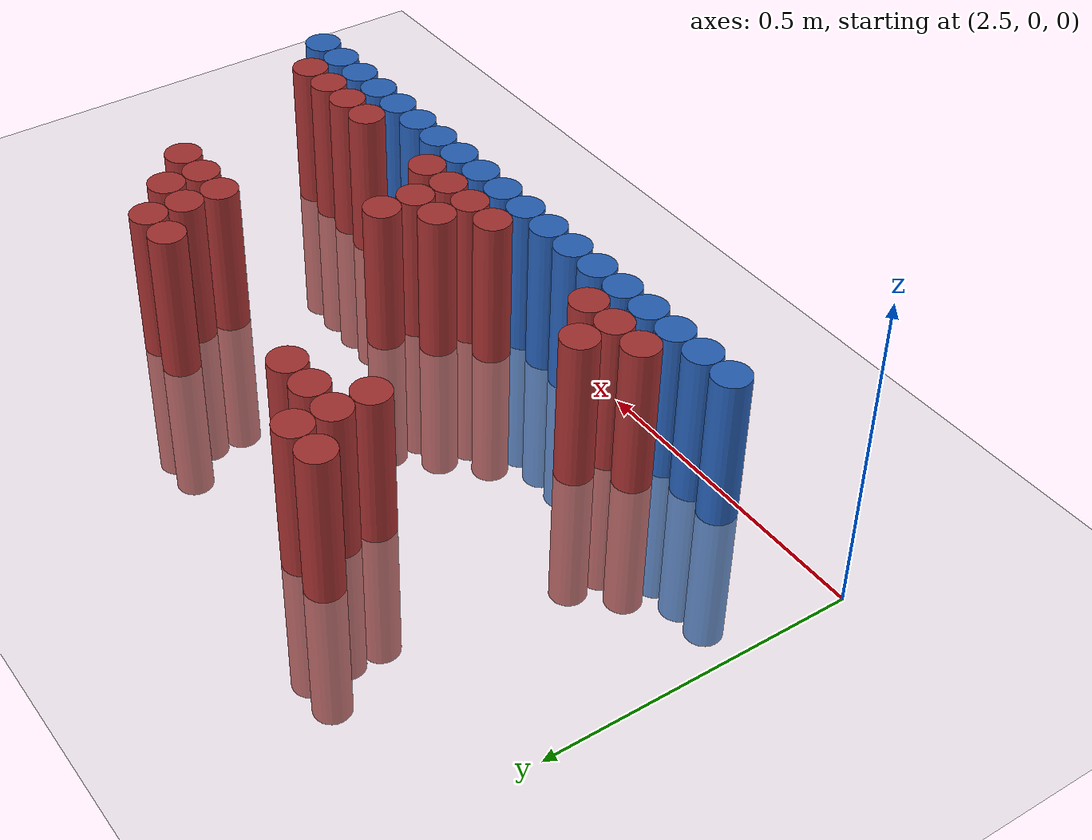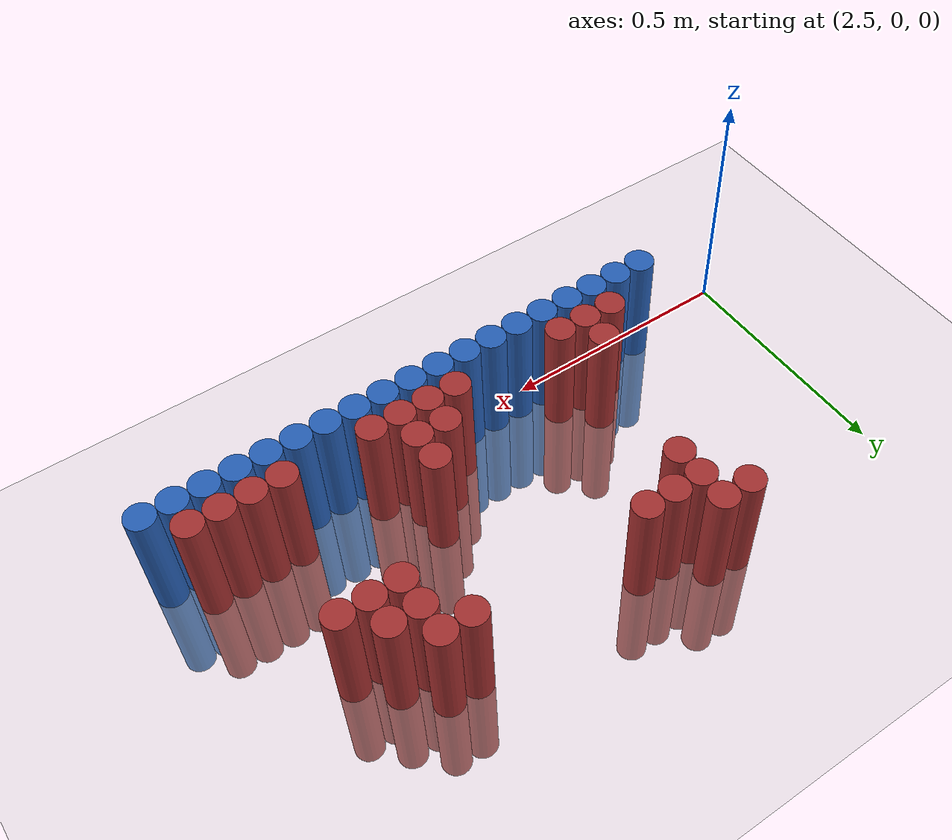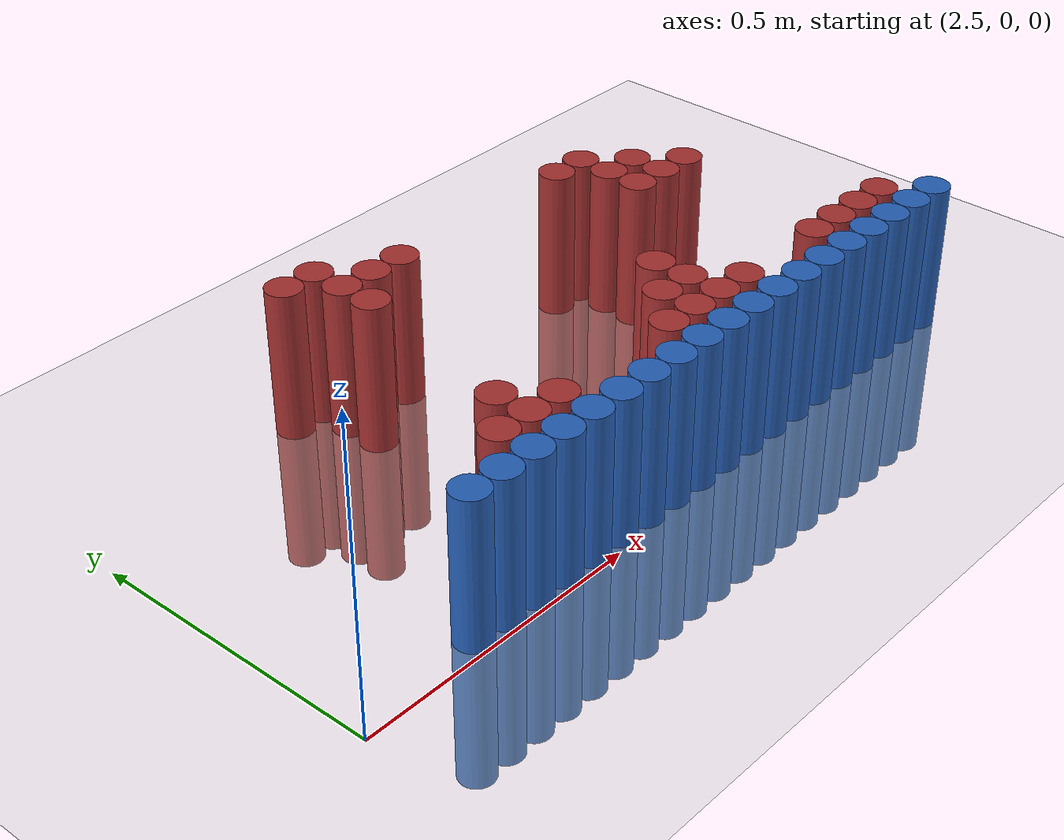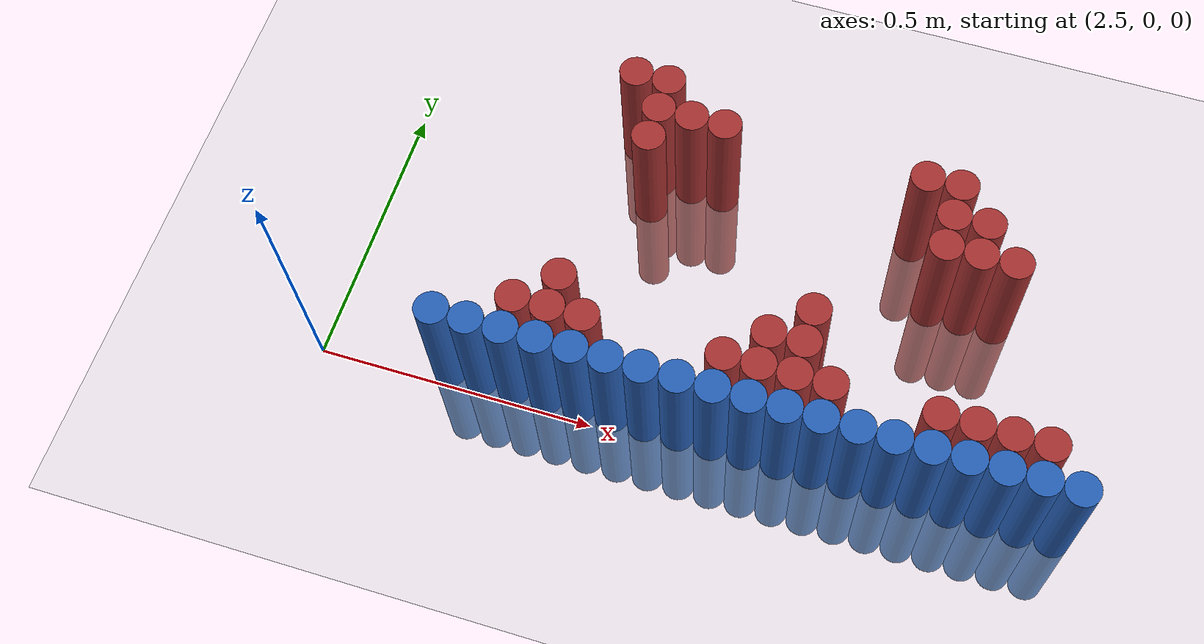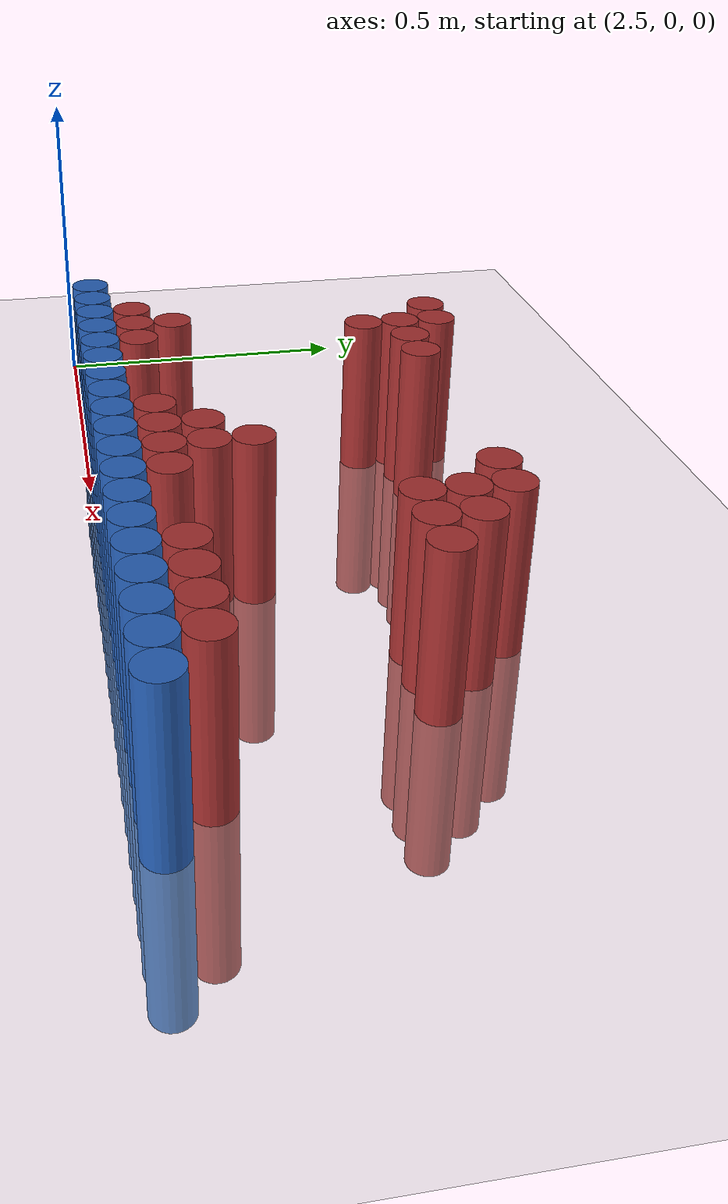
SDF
<sdf version="1.6">
 <world name="default">
  <model name="ground_plane">
   <static>1</static>
   <link name="link">
    <collision name="collision">
     <geometry><plane><normal>0 0 1</normal><size>100 100</size></plane></geometry>
     <surface><friction><ode><mu>100</mu><mu2>50</mu2></ode></friction></surface>
    </collision>
    <visual name="visual">
     <cast_shadows>0</cast_shadows>
     <geometry><plane><normal>0 0 1</normal><size>100 100</size></plane></geometry>
     <material>
      <script><uri>file://media/materials/scripts/gazebo.material</uri><name>Gazebo/Grey</name></script>
     </material>
    </visual>
   </link>
  </model>
  <model name="unit_cylinder_167">
   <static>1</static>
   <pose>2.910000 0.570000 0.000000 0.000000 0.000000 0.000000</pose>
   <link name="link">
    <inertial>
     <mass>1</mass>
     <inertia><ixx>0.145833</ixx><ixy>0</ixy><ixz>0</ixz><iyy>0.145833</iyy><iyz>0</iyz><izz>0.125</izz></inertia>
    </inertial>
    <collision name="collision">
     <geometry><cylinder><radius>0.030000</radius><length>0.5</length></cylinder></geometry>
    </collision>
    <visual name="visual">
     <geometry><cylinder><radius>0.030000</radius><length>0.5</length></cylinder></geometry>
     <material>
      <ambient>0.648000 0.192000 0.192000 1</ambient>
      <diffuse>0.648000 0.192000 0.192000 1</diffuse>
     </material>
     <material>
      <script><name>Gazebo/Grey</name><uri>file://media/materials/scripts/gazebo.material</uri></script>
     </material>
    </visual>
   </link>
  </model>
  <model name="unit_cylinder_168">
   <static>1</static>
   <pose>2.970000 0.570000 0.000000 0.000000 0.000000 0.000000</pose>
   <link name="link">
    <inertial>
     <mass>1</mass>
     <inertia><ixx>0.145833</ixx><ixy>0</ixy><ixz>0</ixz><iyy>0.145833</iyy><iyz>0</iyz><izz>0.125</izz></inertia>
    </inertial>
    <collision name="collision">
     <geometry><cylinder><radius>0.030000</radius><length>0.5</length></cylinder></geometry>
    </collision>
    <visual name="visual">
     <geometry><cylinder><radius>0.030000</radius><length>0.5</length></cylinder></geometry>
     <material>
      <ambient>0.648000 0.192000 0.192000 1</ambient>
      <diffuse>0.648000 0.192000 0.192000 1</diffuse>
     </material>
     <material>
      <script><name>Gazebo/Grey</name><uri>file://media/materials/scripts/gazebo.material</uri></script>
     </material>
    </visual>
   </link>
  </model>
  <model name="unit_cylinder_172">
   <static>1</static>
   <pose>2.970000 0.510000 0.000000 0.000000 0.000000 0.000000</pose>
   <link name="link">
    <inertial>
     <mass>1</mass>
     <inertia><ixx>0.145833</ixx><ixy>0</ixy><ixz>0</ixz><iyy>0.145833</iyy><iyz>0</iyz><izz>0.125</izz></inertia>
    </inertial>
    <collision name="collision">
     <geometry><cylinder><radius>0.030000</radius><length>0.5</length></cylinder></geometry>
    </collision>
    <visual name="visual">
     <geometry><cylinder><radius>0.030000</radius><length>0.5</length></cylinder></geometry>
     <material>
      <ambient>0.648000 0.192000 0.192000 1</ambient>
      <diffuse>0.648000 0.192000 0.192000 1</diffuse>
     </material>
     <material>
      <script><name>Gazebo/Grey</name><uri>file://media/materials/scripts/gazebo.material</uri></script>
     </material>
    </visual>
   </link>
  </model>
  <model name="unit_cylinder_173">
   <static>1</static>
   <pose>3.030000 0.510000 0.000000 0.000000 0.000000 0.000000</pose>
   <link name="link">
    <inertial>
     <mass>1</mass>
     <inertia><ixx>0.145833</ixx><ixy>0</ixy><ixz>0</ixz><iyy>0.145833</iyy><iyz>0</iyz><izz>0.125</izz></inertia>
    </inertial>
    <collision name="collision">
     <geometry><cylinder><radius>0.030000</radius><length>0.5</length></cylinder></geometry>
    </collision>
    <visual name="visual">
     <geometry><cylinder><radius>0.030000</radius><length>0.5</length></cylinder></geometry>
     <material>
      <ambient>0.648000 0.192000 0.192000 1</ambient>
      <diffuse>0.648000 0.192000 0.192000 1</diffuse>
     </material>
     <material>
      <script><name>Gazebo/Grey</name><uri>file://media/materials/scripts/gazebo.material</uri></script>
     </material>
    </visual>
   </link>
  </model>
  <model name="unit_cylinder_174">
   <static>1</static>
   <pose>3.090000 0.510000 0.000000 0.000000 0.000000 0.000000</pose>
   <link name="link">
    <inertial>
     <mass>1</mass>
     <inertia><ixx>0.145833</ixx><ixy>0</ixy><ixz>0</ixz><iyy>0.145833</iyy><iyz>0</iyz><izz>0.125</izz></inertia>
    </inertial>
    <collision name="collision">
     <geometry><cylinder><radius>0.030000</radius><length>0.5</length></cylinder></geometry>
    </collision>
    <visual name="visual">
     <geometry><cylinder><radius>0.030000</radius><length>0.5</length></cylinder></geometry>
     <material>
      <ambient>0.648000 0.192000 0.192000 1</ambient>
      <diffuse>0.648000 0.192000 0.192000 1</diffuse>
     </material>
     <material>
      <script><name>Gazebo/Grey</name><uri>file://media/materials/scripts/gazebo.material</uri></script>
     </material>
    </visual>
   </link>
  </model>
  <model name="unit_cylinder_175">
   <static>1</static>
   <pose>3.450000 0.510000 0.000000 0.000000 0.000000 0.000000</pose>
   <link name="link">
    <inertial>
     <mass>1</mass>
     <inertia><ixx>0.145833</ixx><ixy>0</ixy><ixz>0</ixz><iyy>0.145833</iyy><iyz>0</iyz><izz>0.125</izz></inertia>
    </inertial>
    <collision name="collision">
     <geometry><cylinder><radius>0.030000</radius><length>0.5</length></cylinder></geometry>
    </collision>
    <visual name="visual">
     <geometry><cylinder><radius>0.030000</radius><length>0.5</length></cylinder></geometry>
     <material>
      <ambient>0.648000 0.192000 0.192000 1</ambient>
      <diffuse>0.648000 0.192000 0.192000 1</diffuse>
     </material>
     <material>
      <script><name>Gazebo/Grey</name><uri>file://media/materials/scripts/gazebo.material</uri></script>
     </material>
    </visual>
   </link>
  </model>
  <model name="unit_cylinder_176">
   <static>1</static>
   <pose>3.510000 0.510000 0.000000 0.000000 0.000000 0.000000</pose>
   <link name="link">
    <inertial>
     <mass>1</mass>
     <inertia><ixx>0.145833</ixx><ixy>0</ixy><ixz>0</ixz><iyy>0.145833</iyy><iyz>0</iyz><izz>0.125</izz></inertia>
    </inertial>
    <collision name="collision">
     <geometry><cylinder><radius>0.030000</radius><length>0.5</length></cylinder></geometry>
    </collision>
    <visual name="visual">
     <geometry><cylinder><radius>0.030000</radius><length>0.5</length></cylinder></geometry>
     <material>
      <ambient>0.648000 0.192000 0.192000 1</ambient>
      <diffuse>0.648000 0.192000 0.192000 1</diffuse>
     </material>
     <material>
      <script><name>Gazebo/Grey</name><uri>file://media/materials/scripts/gazebo.material</uri></script>
     </material>
    </visual>
   </link>
  </model>
  <model name="unit_cylinder_179">
   <static>1</static>
   <pose>2.970000 0.450000 0.000000 0.000000 0.000000 0.000000</pose>
   <link name="link">
    <inertial>
     <mass>1</mass>
     <inertia><ixx>0.145833</ixx><ixy>0</ixy><ixz>0</ixz><iyy>0.145833</iyy><iyz>0</iyz><izz>0.125</izz></inertia>
    </inertial>
    <collision name="collision">
     <geometry><cylinder><radius>0.030000</radius><length>0.5</length></cylinder></geometry>
    </collision>
    <visual name="visual">
     <geometry><cylinder><radius>0.030000</radius><length>0.5</length></cylinder></geometry>
     <material>
      <ambient>0.648000 0.192000 0.192000 1</ambient>
      <diffuse>0.648000 0.192000 0.192000 1</diffuse>
     </material>
     <material>
      <script><name>Gazebo/Grey</name><uri>file://media/materials/scripts/gazebo.material</uri></script>
     </material>
    </visual>
   </link>
  </model>
  <model name="unit_cylinder_180">
   <static>1</static>
   <pose>3.510000 0.450000 0.000000 0.000000 0.000000 0.000000</pose>
   <link name="link">
    <inertial>
     <mass>1</mass>
     <inertia><ixx>0.145833</ixx><ixy>0</ixy><ixz>0</ixz><iyy>0.145833</iyy><iyz>0</iyz><izz>0.125</izz></inertia>
    </inertial>
    <collision name="collision">
     <geometry><cylinder><radius>0.030000</radius><length>0.5</length></cylinder></geometry>
    </collision>
    <visual name="visual">
     <geometry><cylinder><radius>0.030000</radius><length>0.5</length></cylinder></geometry>
     <material>
      <ambient>0.648000 0.192000 0.192000 1</ambient>
      <diffuse>0.648000 0.192000 0.192000 1</diffuse>
     </material>
     <material>
      <script><name>Gazebo/Grey</name><uri>file://media/materials/scripts/gazebo.material</uri></script>
     </material>
    </visual>
   </link>
  </model>
  <model name="unit_cylinder_181">
   <static>1</static>
   <pose>3.570000 0.450000 0.000000 0.000000 0.000000 0.000000</pose>
   <link name="link">
    <inertial>
     <mass>1</mass>
     <inertia><ixx>0.145833</ixx><ixy>0</ixy><ixz>0</ixz><iyy>0.145833</iyy><iyz>0</iyz><izz>0.125</izz></inertia>
    </inertial>
    <collision name="collision">
     <geometry><cylinder><radius>0.030000</radius><length>0.5</length></cylinder></geometry>
    </collision>
    <visual name="visual">
     <geometry><cylinder><radius>0.030000</radius><length>0.5</length></cylinder></geometry>
     <material>
      <ambient>0.648000 0.192000 0.192000 1</ambient>
      <diffuse>0.648000 0.192000 0.192000 1</diffuse>
     </material>
     <material>
      <script><name>Gazebo/Grey</name><uri>file://media/materials/scripts/gazebo.material</uri></script>
     </material>
    </visual>
   </link>
  </model>
  <model name="unit_cylinder_185">
   <static>1</static>
   <pose>3.510000 0.390000 0.000000 0.000000 0.000000 0.000000</pose>
   <link name="link">
    <inertial>
     <mass>1</mass>
     <inertia><ixx>0.145833</ixx><ixy>0</ixy><ixz>0</ixz><iyy>0.145833</iyy><iyz>0</iyz><izz>0.125</izz></inertia>
    </inertial>
    <collision name="collision">
     <geometry><cylinder><radius>0.030000</radius><length>0.5</length></cylinder></geometry>
    </collision>
    <visual name="visual">
     <geometry><cylinder><radius>0.030000</radius><length>0.5</length></cylinder></geometry>
     <material>
      <ambient>0.648000 0.192000 0.192000 1</ambient>
      <diffuse>0.648000 0.192000 0.192000 1</diffuse>
     </material>
     <material>
      <script><name>Gazebo/Grey</name><uri>file://media/materials/scripts/gazebo.material</uri></script>
     </material>
    </visual>
   </link>
  </model>
  <model name="unit_cylinder_186">
   <static>1</static>
   <pose>3.570000 0.390000 0.000000 0.000000 0.000000 0.000000</pose>
   <link name="link">
    <inertial>
     <mass>1</mass>
     <inertia><ixx>0.145833</ixx><ixy>0</ixy><ixz>0</ixz><iyy>0.145833</iyy><iyz>0</iyz><izz>0.125</izz></inertia>
    </inertial>
    <collision name="collision">
     <geometry><cylinder><radius>0.030000</radius><length>0.5</length></cylinder></geometry>
    </collision>
    <visual name="visual">
     <geometry><cylinder><radius>0.030000</radius><length>0.5</length></cylinder></geometry>
     <material>
      <ambient>0.648000 0.192000 0.192000 1</ambient>
      <diffuse>0.648000 0.192000 0.192000 1</diffuse>
     </material>
     <material>
      <script><name>Gazebo/Grey</name><uri>file://media/materials/scripts/gazebo.material</uri></script>
     </material>
    </visual>
   </link>
  </model>
  <model name="unit_cylinder_187">
   <static>1</static>
   <pose>3.630000 0.390000 0.000000 0.000000 0.000000 0.000000</pose>
   <link name="link">
    <inertial>
     <mass>1</mass>
     <inertia><ixx>0.145833</ixx><ixy>0</ixy><ixz>0</ixz><iyy>0.145833</iyy><iyz>0</iyz><izz>0.125</izz></inertia>
    </inertial>
    <collision name="collision">
     <geometry><cylinder><radius>0.030000</radius><length>0.5</length></cylinder></geometry>
    </collision>
    <visual name="visual">
     <geometry><cylinder><radius>0.030000</radius><length>0.5</length></cylinder></geometry>
     <material>
      <ambient>0.648000 0.192000 0.192000 1</ambient>
      <diffuse>0.648000 0.192000 0.192000 1</diffuse>
     </material>
     <material>
      <script><name>Gazebo/Grey</name><uri>file://media/materials/scripts/gazebo.material</uri></script>
     </material>
    </visual>
   </link>
  </model>
  <model name="unit_cylinder_188">
   <static>1</static>
   <pose>3.330000 0.210000 0.000000 0.000000 0.000000 0.000000</pose>
   <link name="link">
    <inertial>
     <mass>1</mass>
     <inertia><ixx>0.145833</ixx><ixy>0</ixy><ixz>0</ixz><iyy>0.145833</iyy><iyz>0</iyz><izz>0.125</izz></inertia>
    </inertial>
    <collision name="collision">
     <geometry><cylinder><radius>0.030000</radius><length>0.5</length></cylinder></geometry>
    </collision>
    <visual name="visual">
     <geometry><cylinder><radius>0.030000</radius><length>0.5</length></cylinder></geometry>
     <material>
      <ambient>0.648000 0.192000 0.192000 1</ambient>
      <diffuse>0.648000 0.192000 0.192000 1</diffuse>
     </material>
     <material>
      <script><name>Gazebo/Grey</name><uri>file://media/materials/scripts/gazebo.material</uri></script>
     </material>
    </visual>
   </link>
  </model>
  <model name="unit_cylinder_189">
   <static>1</static>
   <pose>2.910000 0.150000 0.000000 0.000000 0.000000 0.000000</pose>
   <link name="link">
    <inertial>
     <mass>1</mass>
     <inertia><ixx>0.145833</ixx><ixy>0</ixy><ixz>0</ixz><iyy>0.145833</iyy><iyz>0</iyz><izz>0.125</izz></inertia>
    </inertial>
    <collision name="collision">
     <geometry><cylinder><radius>0.030000</radius><length>0.5</length></cylinder></geometry>
    </collision>
    <visual name="visual">
     <geometry><cylinder><radius>0.030000</radius><length>0.5</length></cylinder></geometry>
     <material>
      <ambient>0.648000 0.192000 0.192000 1</ambient>
      <diffuse>0.648000 0.192000 0.192000 1</diffuse>
     </material>
     <material>
      <script><name>Gazebo/Grey</name><uri>file://media/materials/scripts/gazebo.material</uri></script>
     </material>
    </visual>
   </link>
  </model>
  <model name="unit_cylinder_190">
   <static>1</static>
   <pose>3.270000 0.150000 0.000000 0.000000 0.000000 0.000000</pose>
   <link name="link">
    <inertial>
     <mass>1</mass>
     <inertia><ixx>0.145833</ixx><ixy>0</ixy><ixz>0</ixz><iyy>0.145833</iyy><iyz>0</iyz><izz>0.125</izz></inertia>
    </inertial>
    <collision name="collision">
     <geometry><cylinder><radius>0.030000</radius><length>0.5</length></cylinder></geometry>
    </collision>
    <visual name="visual">
     <geometry><cylinder><radius>0.030000</radius><length>0.5</length></cylinder></geometry>
     <material>
      <ambient>0.648000 0.192000 0.192000 1</ambient>
      <diffuse>0.648000 0.192000 0.192000 1</diffuse>
     </material>
     <material>
      <script><name>Gazebo/Grey</name><uri>file://media/materials/scripts/gazebo.material</uri></script>
     </material>
    </visual>
   </link>
  </model>
  <model name="unit_cylinder_191">
   <static>1</static>
   <pose>3.330000 0.150000 0.000000 0.000000 0.000000 0.000000</pose>
   <link name="link">
    <inertial>
     <mass>1</mass>
     <inertia><ixx>0.145833</ixx><ixy>0</ixy><ixz>0</ixz><iyy>0.145833</iyy><iyz>0</iyz><izz>0.125</izz></inertia>
    </inertial>
    <collision name="collision">
     <geometry><cylinder><radius>0.030000</radius><length>0.5</length></cylinder></geometry>
    </collision>
    <visual name="visual">
     <geometry><cylinder><radius>0.030000</radius><length>0.5</length></cylinder></geometry>
     <material>
      <ambient>0.648000 0.192000 0.192000 1</ambient>
      <diffuse>0.648000 0.192000 0.192000 1</diffuse>
     </material>
     <material>
      <script><name>Gazebo/Grey</name><uri>file://media/materials/scripts/gazebo.material</uri></script>
     </material>
    </visual>
   </link>
  </model>
  <model name="unit_cylinder_196">
   <static>1</static>
   <pose>2.850000 0.090000 0.000000 0.000000 0.000000 0.000000</pose>
   <link name="link">
    <inertial>
     <mass>1</mass>
     <inertia><ixx>0.145833</ixx><ixy>0</ixy><ixz>0</ixz><iyy>0.145833</iyy><iyz>0</iyz><izz>0.125</izz></inertia>
    </inertial>
    <collision name="collision">
     <geometry><cylinder><radius>0.030000</radius><length>0.5</length></cylinder></geometry>
    </collision>
    <visual name="visual">
     <geometry><cylinder><radius>0.030000</radius><length>0.5</length></cylinder></geometry>
     <material>
      <ambient>0.648000 0.192000 0.192000 1</ambient>
      <diffuse>0.648000 0.192000 0.192000 1</diffuse>
     </material>
     <material>
      <script><name>Gazebo/Grey</name><uri>file://media/materials/scripts/gazebo.material</uri></script>
     </material>
    </visual>
   </link>
  </model>
  <model name="unit_cylinder_197">
   <static>1</static>
   <pose>2.910000 0.090000 0.000000 0.000000 0.000000 0.000000</pose>
   <link name="link">
    <inertial>
     <mass>1</mass>
     <inertia><ixx>0.145833</ixx><ixy>0</ixy><ixz>0</ixz><iyy>0.145833</iyy><iyz>0</iyz><izz>0.125</izz></inertia>
    </inertial>
    <collision name="collision">
     <geometry><cylinder><radius>0.030000</radius><length>0.5</length></cylinder></geometry>
    </collision>
    <visual name="visual">
     <geometry><cylinder><radius>0.030000</radius><length>0.5</length></cylinder></geometry>
     <material>
      <ambient>0.648000 0.192000 0.192000 1</ambient>
      <diffuse>0.648000 0.192000 0.192000 1</diffuse>
     </material>
     <material>
      <script><name>Gazebo/Grey</name><uri>file://media/materials/scripts/gazebo.material</uri></script>
     </material>
    </visual>
   </link>
  </model>
  <model name="unit_cylinder_198">
   <static>1</static>
   <pose>2.970000 0.090000 0.000000 0.000000 0.000000 0.000000</pose>
   <link name="link">
    <inertial>
     <mass>1</mass>
     <inertia><ixx>0.145833</ixx><ixy>0</ixy><ixz>0</ixz><iyy>0.145833</iyy><iyz>0</iyz><izz>0.125</izz></inertia>
    </inertial>
    <collision name="collision">
     <geometry><cylinder><radius>0.030000</radius><length>0.5</length></cylinder></geometry>
    </collision>
    <visual name="visual">
     <geometry><cylinder><radius>0.030000</radius><length>0.5</length></cylinder></geometry>
     <material>
      <ambient>0.648000 0.192000 0.192000 1</ambient>
      <diffuse>0.648000 0.192000 0.192000 1</diffuse>
     </material>
     <material>
      <script><name>Gazebo/Grey</name><uri>file://media/materials/scripts/gazebo.material</uri></script>
     </material>
    </visual>
   </link>
  </model>
  <model name="unit_cylinder_199">
   <static>1</static>
   <pose>3.210000 0.090000 0.000000 0.000000 0.000000 0.000000</pose>
   <link name="link">
    <inertial>
     <mass>1</mass>
     <inertia><ixx>0.145833</ixx><ixy>0</ixy><ixz>0</ixz><iyy>0.145833</iyy><iyz>0</iyz><izz>0.125</izz></inertia>
    </inertial>
    <collision name="collision">
     <geometry><cylinder><radius>0.030000</radius><length>0.5</length></cylinder></geometry>
    </collision>
    <visual name="visual">
     <geometry><cylinder><radius>0.030000</radius><length>0.5</length></cylinder></geometry>
     <material>
      <ambient>0.648000 0.192000 0.192000 1</ambient>
      <diffuse>0.648000 0.192000 0.192000 1</diffuse>
     </material>
     <material>
      <script><name>Gazebo/Grey</name><uri>file://media/materials/scripts/gazebo.material</uri></script>
     </material>
    </visual>
   </link>
  </model>
  <model name="unit_cylinder_200">
   <static>1</static>
   <pose>3.270000 0.090000 0.000000 0.000000 0.000000 0.000000</pose>
   <link name="link">
    <inertial>
     <mass>1</mass>
     <inertia><ixx>0.145833</ixx><ixy>0</ixy><ixz>0</ixz><iyy>0.145833</iyy><iyz>0</iyz><izz>0.125</izz></inertia>
    </inertial>
    <collision name="collision">
     <geometry><cylinder><radius>0.030000</radius><length>0.5</length></cylinder></geometry>
    </collision>
    <visual name="visual">
     <geometry><cylinder><radius>0.030000</radius><length>0.5</length></cylinder></geometry>
     <material>
      <ambient>0.648000 0.192000 0.192000 1</ambient>
      <diffuse>0.648000 0.192000 0.192000 1</diffuse>
     </material>
     <material>
      <script><name>Gazebo/Grey</name><uri>file://media/materials/scripts/gazebo.material</uri></script>
     </material>
    </visual>
   </link>
  </model>
  <model name="unit_cylinder_201">
   <static>1</static>
   <pose>3.330000 0.090000 0.000000 0.000000 0.000000 0.000000</pose>
   <link name="link">
    <inertial>
     <mass>1</mass>
     <inertia><ixx>0.145833</ixx><ixy>0</ixy><ixz>0</ixz><iyy>0.145833</iyy><iyz>0</iyz><izz>0.125</izz></inertia>
    </inertial>
    <collision name="collision">
     <geometry><cylinder><radius>0.030000</radius><length>0.5</length></cylinder></geometry>
    </collision>
    <visual name="visual">
     <geometry><cylinder><radius>0.030000</radius><length>0.5</length></cylinder></geometry>
     <material>
      <ambient>0.648000 0.192000 0.192000 1</ambient>
      <diffuse>0.648000 0.192000 0.192000 1</diffuse>
     </material>
     <material>
      <script><name>Gazebo/Grey</name><uri>file://media/materials/scripts/gazebo.material</uri></script>
     </material>
    </visual>
   </link>
  </model>
  <model name="unit_cylinder_202">
   <static>1</static>
   <pose>3.390000 0.090000 0.000000 0.000000 0.000000 0.000000</pose>
   <link name="link">
    <inertial>
     <mass>1</mass>
     <inertia><ixx>0.145833</ixx><ixy>0</ixy><ixz>0</ixz><iyy>0.145833</iyy><iyz>0</iyz><izz>0.125</izz></inertia>
    </inertial>
    <collision name="collision">
     <geometry><cylinder><radius>0.030000</radius><length>0.5</length></cylinder></geometry>
    </collision>
    <visual name="visual">
     <geometry><cylinder><radius>0.030000</radius><length>0.5</length></cylinder></geometry>
     <material>
      <ambient>0.648000 0.192000 0.192000 1</ambient>
      <diffuse>0.648000 0.192000 0.192000 1</diffuse>
     </material>
     <material>
      <script><name>Gazebo/Grey</name><uri>file://media/materials/scripts/gazebo.material</uri></script>
     </material>
    </visual>
   </link>
  </model>
  <model name="unit_cylinder_203">
   <static>1</static>
   <pose>3.570000 0.090000 0.000000 0.000000 0.000000 0.000000</pose>
   <link name="link">
    <inertial>
     <mass>1</mass>
     <inertia><ixx>0.145833</ixx><ixy>0</ixy><ixz>0</ixz><iyy>0.145833</iyy><iyz>0</iyz><izz>0.125</izz></inertia>
    </inertial>
    <collision name="collision">
     <geometry><cylinder><radius>0.030000</radius><length>0.5</length></cylinder></geometry>
    </collision>
    <visual name="visual">
     <geometry><cylinder><radius>0.030000</radius><length>0.5</length></cylinder></geometry>
     <material>
      <ambient>0.648000 0.192000 0.192000 1</ambient>
      <diffuse>0.648000 0.192000 0.192000 1</diffuse>
     </material>
     <material>
      <script><name>Gazebo/Grey</name><uri>file://media/materials/scripts/gazebo.material</uri></script>
     </material>
    </visual>
   </link>
  </model>
  <model name="unit_cylinder_204">
   <static>1</static>
   <pose>3.630000 0.090000 0.000000 0.000000 0.000000 0.000000</pose>
   <link name="link">
    <inertial>
     <mass>1</mass>
     <inertia><ixx>0.145833</ixx><ixy>0</ixy><ixz>0</ixz><iyy>0.145833</iyy><iyz>0</iyz><izz>0.125</izz></inertia>
    </inertial>
    <collision name="collision">
     <geometry><cylinder><radius>0.030000</radius><length>0.5</length></cylinder></geometry>
    </collision>
    <visual name="visual">
     <geometry><cylinder><radius>0.030000</radius><length>0.5</length></cylinder></geometry>
     <material>
      <ambient>0.648000 0.192000 0.192000 1</ambient>
      <diffuse>0.648000 0.192000 0.192000 1</diffuse>
     </material>
     <material>
      <script><name>Gazebo/Grey</name><uri>file://media/materials/scripts/gazebo.material</uri></script>
     </material>
    </visual>
   </link>
  </model>
  <model name="unit_cylinder_205">
   <static>1</static>
   <pose>3.690000 0.090000 0.000000 0.000000 0.000000 0.000000</pose>
   <link name="link">
    <inertial>
     <mass>1</mass>
     <inertia><ixx>0.145833</ixx><ixy>0</ixy><ixz>0</ixz><iyy>0.145833</iyy><iyz>0</iyz><izz>0.125</izz></inertia>
    </inertial>
    <collision name="collision">
     <geometry><cylinder><radius>0.030000</radius><length>0.5</length></cylinder></geometry>
    </collision>
    <visual name="visual">
     <geometry><cylinder><radius>0.030000</radius><length>0.5</length></cylinder></geometry>
     <material>
      <ambient>0.648000 0.192000 0.192000 1</ambient>
      <diffuse>0.648000 0.192000 0.192000 1</diffuse>
     </material>
     <material>
      <script><name>Gazebo/Grey</name><uri>file://media/materials/scripts/gazebo.material</uri></script>
     </material>
    </visual>
   </link>
  </model>
  <model name="unit_cylinder_206">
   <static>1</static>
   <pose>3.750000 0.090000 0.000000 0.000000 0.000000 0.000000</pose>
   <link name="link">
    <inertial>
     <mass>1</mass>
     <inertia><ixx>0.145833</ixx><ixy>0</ixy><ixz>0</ixz><iyy>0.145833</iyy><iyz>0</iyz><izz>0.125</izz></inertia>
    </inertial>
    <collision name="collision">
     <geometry><cylinder><radius>0.030000</radius><length>0.5</length></cylinder></geometry>
    </collision>
    <visual name="visual">
     <geometry><cylinder><radius>0.030000</radius><length>0.5</length></cylinder></geometry>
     <material>
      <ambient>0.648000 0.192000 0.192000 1</ambient>
      <diffuse>0.648000 0.192000 0.192000 1</diffuse>
     </material>
     <material>
      <script><name>Gazebo/Grey</name><uri>file://media/materials/scripts/gazebo.material</uri></script>
     </material>
    </visual>
   </link>
  </model>
  <model name="unit_cylinder_218">
   <static>1</static>
   <pose>2.730000 0.030000 0.000000 0.000000 0.000000 0.000000</pose>
   <link name="link">
    <inertial>
     <mass>1</mass>
     <inertia><ixx>0.145833</ixx><ixy>0</ixy><ixz>0</ixz><iyy>0.145833</iyy><iyz>0</iyz><izz>0.125</izz></inertia>
    </inertial>
    <collision name="collision">
     <geometry><cylinder><radius>0.030000</radius><length>0.5</length></cylinder></geometry>
    </collision>
    <visual name="visual">
     <geometry><cylinder><radius>0.030000</radius><length>0.5</length></cylinder></geometry>
     <material>
      <ambient>0.152000 0.379000 0.720000 1</ambient>
      <diffuse>0.152000 0.379000 0.720000 1</diffuse>
     </material>
     <material>
      <script><name>Gazebo/Grey</name><uri>file://media/materials/scripts/gazebo.material</uri></script>
     </material>
    </visual>
   </link>
  </model>
  <model name="unit_cylinder_219">
   <static>1</static>
   <pose>2.790000 0.030000 0.000000 0.000000 0.000000 0.000000</pose>
   <link name="link">
    <inertial>
     <mass>1</mass>
     <inertia><ixx>0.145833</ixx><ixy>0</ixy><ixz>0</ixz><iyy>0.145833</iyy><iyz>0</iyz><izz>0.125</izz></inertia>
    </inertial>
    <collision name="collision">
     <geometry><cylinder><radius>0.030000</radius><length>0.5</length></cylinder></geometry>
    </collision>
    <visual name="visual">
     <geometry><cylinder><radius>0.030000</radius><length>0.5</length></cylinder></geometry>
     <material>
      <ambient>0.152000 0.379000 0.720000 1</ambient>
      <diffuse>0.152000 0.379000 0.720000 1</diffuse>
     </material>
     <material>
      <script><name>Gazebo/Grey</name><uri>file://media/materials/scripts/gazebo.material</uri></script>
     </material>
    </visual>
   </link>
  </model>
  <model name="unit_cylinder_220">
   <static>1</static>
   <pose>2.850000 0.030000 0.000000 0.000000 0.000000 0.000000</pose>
   <link name="link">
    <inertial>
     <mass>1</mass>
     <inertia><ixx>0.145833</ixx><ixy>0</ixy><ixz>0</ixz><iyy>0.145833</iyy><iyz>0</iyz><izz>0.125</izz></inertia>
    </inertial>
    <collision name="collision">
     <geometry><cylinder><radius>0.030000</radius><length>0.5</length></cylinder></geometry>
    </collision>
    <visual name="visual">
     <geometry><cylinder><radius>0.030000</radius><length>0.5</length></cylinder></geometry>
     <material>
      <ambient>0.152000 0.379000 0.720000 1</ambient>
      <diffuse>0.152000 0.379000 0.720000 1</diffuse>
     </material>
     <material>
      <script><name>Gazebo/Grey</name><uri>file://media/materials/scripts/gazebo.material</uri></script>
     </material>
    </visual>
   </link>
  </model>
  <model name="unit_cylinder_221">
   <static>1</static>
   <pose>2.910000 0.030000 0.000000 0.000000 0.000000 0.000000</pose>
   <link name="link">
    <inertial>
     <mass>1</mass>
     <inertia><ixx>0.145833</ixx><ixy>0</ixy><ixz>0</ixz><iyy>0.145833</iyy><iyz>0</iyz><izz>0.125</izz></inertia>
    </inertial>
    <collision name="collision">
     <geometry><cylinder><radius>0.030000</radius><length>0.5</length></cylinder></geometry>
    </collision>
    <visual name="visual">
     <geometry><cylinder><radius>0.030000</radius><length>0.5</length></cylinder></geometry>
     <material>
      <ambient>0.152000 0.379000 0.720000 1</ambient>
      <diffuse>0.152000 0.379000 0.720000 1</diffuse>
     </material>
     <material>
      <script><name>Gazebo/Grey</name><uri>file://media/materials/scripts/gazebo.material</uri></script>
     </material>
    </visual>
   </link>
  </model>
  <model name="unit_cylinder_222">
   <static>1</static>
   <pose>2.970000 0.030000 0.000000 0.000000 0.000000 0.000000</pose>
   <link name="link">
    <inertial>
     <mass>1</mass>
     <inertia><ixx>0.145833</ixx><ixy>0</ixy><ixz>0</ixz><iyy>0.145833</iyy><iyz>0</iyz><izz>0.125</izz></inertia>
    </inertial>
    <collision name="collision">
     <geometry><cylinder><radius>0.030000</radius><length>0.5</length></cylinder></geometry>
    </collision>
    <visual name="visual">
     <geometry><cylinder><radius>0.030000</radius><length>0.5</length></cylinder></geometry>
     <material>
      <ambient>0.152000 0.379000 0.720000 1</ambient>
      <diffuse>0.152000 0.379000 0.720000 1</diffuse>
     </material>
     <material>
      <script><name>Gazebo/Grey</name><uri>file://media/materials/scripts/gazebo.material</uri></script>
     </material>
    </visual>
   </link>
  </model>
  <model name="unit_cylinder_223">
   <static>1</static>
   <pose>3.030000 0.030000 0.000000 0.000000 0.000000 0.000000</pose>
   <link name="link">
    <inertial>
     <mass>1</mass>
     <inertia><ixx>0.145833</ixx><ixy>0</ixy><ixz>0</ixz><iyy>0.145833</iyy><iyz>0</iyz><izz>0.125</izz></inertia>
    </inertial>
    <collision name="collision">
     <geometry><cylinder><radius>0.030000</radius><length>0.5</length></cylinder></geometry>
    </collision>
    <visual name="visual">
     <geometry><cylinder><radius>0.030000</radius><length>0.5</length></cylinder></geometry>
     <material>
      <ambient>0.152000 0.379000 0.720000 1</ambient>
      <diffuse>0.152000 0.379000 0.720000 1</diffuse>
     </material>
     <material>
      <script><name>Gazebo/Grey</name><uri>file://media/materials/scripts/gazebo.material</uri></script>
     </material>
    </visual>
   </link>
  </model>
  <model name="unit_cylinder_224">
   <static>1</static>
   <pose>3.090000 0.030000 0.000000 0.000000 0.000000 0.000000</pose>
   <link name="link">
    <inertial>
     <mass>1</mass>
     <inertia><ixx>0.145833</ixx><ixy>0</ixy><ixz>0</ixz><iyy>0.145833</iyy><iyz>0</iyz><izz>0.125</izz></inertia>
    </inertial>
    <collision name="collision">
     <geometry><cylinder><radius>0.030000</radius><length>0.5</length></cylinder></geometry>
    </collision>
    <visual name="visual">
     <geometry><cylinder><radius>0.030000</radius><length>0.5</length></cylinder></geometry>
     <material>
      <ambient>0.152000 0.379000 0.720000 1</ambient>
      <diffuse>0.152000 0.379000 0.720000 1</diffuse>
     </material>
     <material>
      <script><name>Gazebo/Grey</name><uri>file://media/materials/scripts/gazebo.material</uri></script>
     </material>
    </visual>
   </link>
  </model>
  <model name="unit_cylinder_225">
   <static>1</static>
   <pose>3.150000 0.030000 0.000000 0.000000 0.000000 0.000000</pose>
   <link name="link">
    <inertial>
     <mass>1</mass>
     <inertia><ixx>0.145833</ixx><ixy>0</ixy><ixz>0</ixz><iyy>0.145833</iyy><iyz>0</iyz><izz>0.125</izz></inertia>
    </inertial>
    <collision name="collision">
     <geometry><cylinder><radius>0.030000</radius><length>0.5</length></cylinder></geometry>
    </collision>
    <visual name="visual">
     <geometry><cylinder><radius>0.030000</radius><length>0.5</length></cylinder></geometry>
     <material>
      <ambient>0.152000 0.379000 0.720000 1</ambient>
      <diffuse>0.152000 0.379000 0.720000 1</diffuse>
     </material>
     <material>
      <script><name>Gazebo/Grey</name><uri>file://media/materials/scripts/gazebo.material</uri></script>
     </material>
    </visual>
   </link>
  </model>
  <model name="unit_cylinder_226">
   <static>1</static>
   <pose>3.210000 0.030000 0.000000 0.000000 0.000000 0.000000</pose>
   <link name="link">
    <inertial>
     <mass>1</mass>
     <inertia><ixx>0.145833</ixx><ixy>0</ixy><ixz>0</ixz><iyy>0.145833</iyy><iyz>0</iyz><izz>0.125</izz></inertia>
    </inertial>
    <collision name="collision">
     <geometry><cylinder><radius>0.030000</radius><length>0.5</length></cylinder></geometry>
    </collision>
    <visual name="visual">
     <geometry><cylinder><radius>0.030000</radius><length>0.5</length></cylinder></geometry>
     <material>
      <ambient>0.152000 0.379000 0.720000 1</ambient>
      <diffuse>0.152000 0.379000 0.720000 1</diffuse>
     </material>
     <material>
      <script><name>Gazebo/Grey</name><uri>file://media/materials/scripts/gazebo.material</uri></script>
     </material>
    </visual>
   </link>
  </model>
  <model name="unit_cylinder_227">
   <static>1</static>
   <pose>3.270000 0.030000 0.000000 0.000000 0.000000 0.000000</pose>
   <link name="link">
    <inertial>
     <mass>1</mass>
     <inertia><ixx>0.145833</ixx><ixy>0</ixy><ixz>0</ixz><iyy>0.145833</iyy><iyz>0</iyz><izz>0.125</izz></inertia>
    </inertial>
    <collision name="collision">
     <geometry><cylinder><radius>0.030000</radius><length>0.5</length></cylinder></geometry>
    </collision>
    <visual name="visual">
     <geometry><cylinder><radius>0.030000</radius><length>0.5</length></cylinder></geometry>
     <material>
      <ambient>0.152000 0.379000 0.720000 1</ambient>
      <diffuse>0.152000 0.379000 0.720000 1</diffuse>
     </material>
     <material>
      <script><name>Gazebo/Grey</name><uri>file://media/materials/scripts/gazebo.material</uri></script>
     </material>
    </visual>
   </link>
  </model>
  <model name="unit_cylinder_228">
   <static>1</static>
   <pose>3.330000 0.030000 0.000000 0.000000 0.000000 0.000000</pose>
   <link name="link">
    <inertial>
     <mass>1</mass>
     <inertia><ixx>0.145833</ixx><ixy>0</ixy><ixz>0</ixz><iyy>0.145833</iyy><iyz>0</iyz><izz>0.125</izz></inertia>
    </inertial>
    <collision name="collision">
     <geometry><cylinder><radius>0.030000</radius><length>0.5</length></cylinder></geometry>
    </collision>
    <visual name="visual">
     <geometry><cylinder><radius>0.030000</radius><length>0.5</length></cylinder></geometry>
     <material>
      <ambient>0.152000 0.379000 0.720000 1</ambient>
      <diffuse>0.152000 0.379000 0.720000 1</diffuse>
     </material>
     <material>
      <script><name>Gazebo/Grey</name><uri>file://media/materials/scripts/gazebo.material</uri></script>
     </material>
    </visual>
   </link>
  </model>
  <model name="unit_cylinder_229">
   <static>1</static>
   <pose>3.390000 0.030000 0.000000 0.000000 0.000000 0.000000</pose>
   <link name="link">
    <inertial>
     <mass>1</mass>
     <inertia><ixx>0.145833</ixx><ixy>0</ixy><ixz>0</ixz><iyy>0.145833</iyy><iyz>0</iyz><izz>0.125</izz></inertia>
    </inertial>
    <collision name="collision">
     <geometry><cylinder><radius>0.030000</radius><length>0.5</length></cylinder></geometry>
    </collision>
    <visual name="visual">
     <geometry><cylinder><radius>0.030000</radius><length>0.5</length></cylinder></geometry>
     <material>
      <ambient>0.152000 0.379000 0.720000 1</ambient>
      <diffuse>0.152000 0.379000 0.720000 1</diffuse>
     </material>
     <material>
      <script><name>Gazebo/Grey</name><uri>file://media/materials/scripts/gazebo.material</uri></script>
     </material>
    </visual>
   </link>
  </model>
  <model name="unit_cylinder_230">
   <static>1</static>
   <pose>3.450000 0.030000 0.000000 0.000000 0.000000 0.000000</pose>
   <link name="link">
    <inertial>
     <mass>1</mass>
     <inertia><ixx>0.145833</ixx><ixy>0</ixy><ixz>0</ixz><iyy>0.145833</iyy><iyz>0</iyz><izz>0.125</izz></inertia>
    </inertial>
    <collision name="collision">
     <geometry><cylinder><radius>0.030000</radius><length>0.5</length></cylinder></geometry>
    </collision>
    <visual name="visual">
     <geometry><cylinder><radius>0.030000</radius><length>0.5</length></cylinder></geometry>
     <material>
      <ambient>0.152000 0.379000 0.720000 1</ambient>
      <diffuse>0.152000 0.379000 0.720000 1</diffuse>
     </material>
     <material>
      <script><name>Gazebo/Grey</name><uri>file://media/materials/scripts/gazebo.material</uri></script>
     </material>
    </visual>
   </link>
  </model>
  <model name="unit_cylinder_231">
   <static>1</static>
   <pose>3.510000 0.030000 0.000000 0.000000 0.000000 0.000000</pose>
   <link name="link">
    <inertial>
     <mass>1</mass>
     <inertia><ixx>0.145833</ixx><ixy>0</ixy><ixz>0</ixz><iyy>0.145833</iyy><iyz>0</iyz><izz>0.125</izz></inertia>
    </inertial>
    <collision name="collision">
     <geometry><cylinder><radius>0.030000</radius><length>0.5</length></cylinder></geometry>
    </collision>
    <visual name="visual">
     <geometry><cylinder><radius>0.030000</radius><length>0.5</length></cylinder></geometry>
     <material>
      <ambient>0.152000 0.379000 0.720000 1</ambient>
      <diffuse>0.152000 0.379000 0.720000 1</diffuse>
     </material>
     <material>
      <script><name>Gazebo/Grey</name><uri>file://media/materials/scripts/gazebo.material</uri></script>
     </material>
    </visual>
   </link>
  </model>
  <model name="unit_cylinder_232">
   <static>1</static>
   <pose>3.570000 0.030000 0.000000 0.000000 0.000000 0.000000</pose>
   <link name="link">
    <inertial>
     <mass>1</mass>
     <inertia><ixx>0.145833</ixx><ixy>0</ixy><ixz>0</ixz><iyy>0.145833</iyy><iyz>0</iyz><izz>0.125</izz></inertia>
    </inertial>
    <collision name="collision">
     <geometry><cylinder><radius>0.030000</radius><length>0.5</length></cylinder></geometry>
    </collision>
    <visual name="visual">
     <geometry><cylinder><radius>0.030000</radius><length>0.5</length></cylinder></geometry>
     <material>
      <ambient>0.152000 0.379000 0.720000 1</ambient>
      <diffuse>0.152000 0.379000 0.720000 1</diffuse>
     </material>
     <material>
      <script><name>Gazebo/Grey</name><uri>file://media/materials/scripts/gazebo.material</uri></script>
     </material>
    </visual>
   </link>
  </model>
  <model name="unit_cylinder_233">
   <static>1</static>
   <pose>3.630000 0.030000 0.000000 0.000000 0.000000 0.000000</pose>
   <link name="link">
    <inertial>
     <mass>1</mass>
     <inertia><ixx>0.145833</ixx><ixy>0</ixy><ixz>0</ixz><iyy>0.145833</iyy><iyz>0</iyz><izz>0.125</izz></inertia>
    </inertial>
    <collision name="collision">
     <geometry><cylinder><radius>0.030000</radius><length>0.5</length></cylinder></geometry>
    </collision>
    <visual name="visual">
     <geometry><cylinder><radius>0.030000</radius><length>0.5</length></cylinder></geometry>
     <material>
      <ambient>0.152000 0.379000 0.720000 1</ambient>
      <diffuse>0.152000 0.379000 0.720000 1</diffuse>
     </material>
     <material>
      <script><name>Gazebo/Grey</name><uri>file://media/materials/scripts/gazebo.material</uri></script>
     </material>
    </visual>
   </link>
  </model>
  <model name="unit_cylinder_234">
   <static>1</static>
   <pose>3.690000 0.030000 0.000000 0.000000 0.000000 0.000000</pose>
   <link name="link">
    <inertial>
     <mass>1</mass>
     <inertia><ixx>0.145833</ixx><ixy>0</ixy><ixz>0</ixz><iyy>0.145833</iyy><iyz>0</iyz><izz>0.125</izz></inertia>
    </inertial>
    <collision name="collision">
     <geometry><cylinder><radius>0.030000</radius><length>0.5</length></cylinder></geometry>
    </collision>
    <visual name="visual">
     <geometry><cylinder><radius>0.030000</radius><length>0.5</length></cylinder></geometry>
     <material>
      <ambient>0.152000 0.379000 0.720000 1</ambient>
      <diffuse>0.152000 0.379000 0.720000 1</diffuse>
     </material>
     <material>
      <script><name>Gazebo/Grey</name><uri>file://media/materials/scripts/gazebo.material</uri></script>
     </material>
    </visual>
   </link>
  </model>
  <model name="unit_cylinder_235">
   <static>1</static>
   <pose>3.750000 0.030000 0.000000 0.000000 0.000000 0.000000</pose>
   <link name="link">
    <inertial>
     <mass>1</mass>
     <inertia><ixx>0.145833</ixx><ixy>0</ixy><ixz>0</ixz><iyy>0.145833</iyy><iyz>0</iyz><izz>0.125</izz></inertia>
    </inertial>
    <collision name="collision">
     <geometry><cylinder><radius>0.030000</radius><length>0.5</length></cylinder></geometry>
    </collision>
    <visual name="visual">
     <geometry><cylinder><radius>0.030000</radius><length>0.5</length></cylinder></geometry>
     <material>
      <ambient>0.152000 0.379000 0.720000 1</ambient>
      <diffuse>0.152000 0.379000 0.720000 1</diffuse>
     </material>
     <material>
      <script><name>Gazebo/Grey</name><uri>file://media/materials/scripts/gazebo.material</uri></script>
     </material>
    </visual>
   </link>
  </model>
  <model name="unit_cylinder_236">
   <static>1</static>
   <pose>3.810000 0.030000 0.000000 0.000000 0.000000 0.000000</pose>
   <link name="link">
    <inertial>
     <mass>1</mass>
     <inertia><ixx>0.145833</ixx><ixy>0</ixy><ixz>0</ixz><iyy>0.145833</iyy><iyz>0</iyz><izz>0.125</izz></inertia>
    </inertial>
    <collision name="collision">
     <geometry><cylinder><radius>0.030000</radius><length>0.5</length></cylinder></geometry>
    </collision>
    <visual name="visual">
     <geometry><cylinder><radius>0.030000</radius><length>0.5</length></cylinder></geometry>
     <material>
      <ambient>0.152000 0.379000 0.720000 1</ambient>
      <diffuse>0.152000 0.379000 0.720000 1</diffuse>
     </material>
     <material>
      <script><name>Gazebo/Grey</name><uri>file://media/materials/scripts/gazebo.material</uri></script>
     </material>
    </visual>
   </link>
  </model>
 </world>
</sdf>
